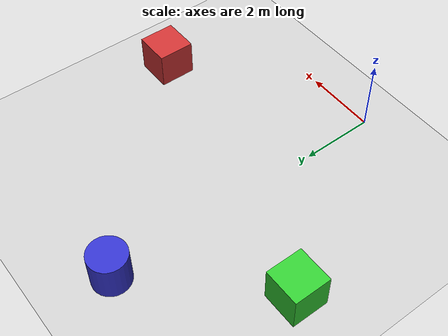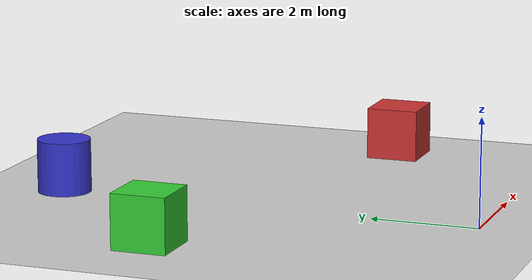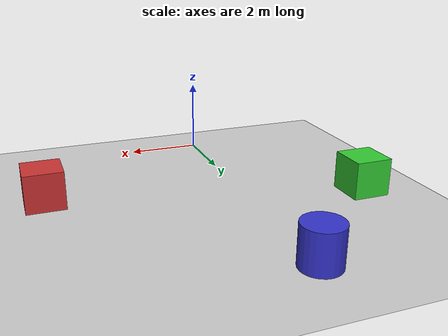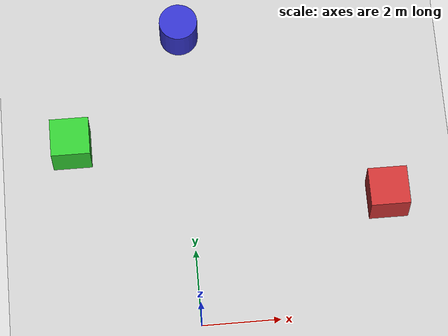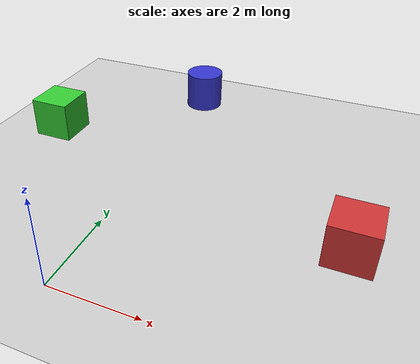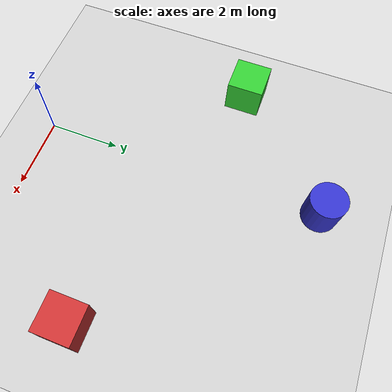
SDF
<?xml version="1.0" ?>
<sdf version="1.6">
  <world name="rover_world">

    <!-- Physics settings optimized for rover simulation -->
    <physics name="default_physics" default="0" type="ode">
      <gravity>0 0 -9.8066</gravity>
      <max_step_size>0.001</max_step_size>
      <real_time_factor>1.0</real_time_factor>
      <real_time_update_rate>1000</real_time_update_rate>
      <ode>
        <solver>
          <type>quick</type>
          <iters>150</iters>
          <sor>1.4</sor>
          <use_dynamic_moi_rescaling>1</use_dynamic_moi_rescaling>
        </solver>
        <constraints>
          <cfm>0.00001</cfm>
          <erp>0.2</erp>
          <contact_max_correcting_vel>2000.0</contact_max_correcting_vel>
          <contact_surface_layer>0.01</contact_surface_layer>
        </constraints>
      </ode>
    </physics>

    <!-- Lighting -->
    <include>
      <uri>model://sun</uri>
    </include>

    <!-- Ground plane -->
    <include>
      <uri>model://ground_plane</uri>
    </include>

    <!-- GPS reference point plugin -->
    <plugin name="gazebo_gps_plugin" filename="libgazebo_gps_plugin.so">
      <robotNamespace></robotNamespace>
      <gpsNoise>true</gpsNoise>
      <gpsXYRandomWalk>2.0</gpsXYRandomWalk>
      <gpsZRandomWalk>4.0</gpsZRandomWalk>
      <gpsXYNoiseDensity>0.0002</gpsXYNoiseDensity>
      <gpsZNoiseDensity>0.0004</gpsZNoiseDensity>
      <gpsVXYNoiseDensity>0.2</gpsVXYNoiseDensity>
      <gpsVZNoiseDensity>0.4</gpsVZNoiseDensity>
    </plugin>

    <!-- Test environment obstacles -->
    <model name="test_box_1">
      <pose>5 3 0.5 0 0 0</pose>
      <static>true</static>
      <link name="link">
        <visual name="visual">
          <geometry>
            <box><size>1 1 1</size></box>
          </geometry>
          <material>
            <ambient>0.8 0.2 0.2 1</ambient>
            <diffuse>0.8 0.2 0.2 1</diffuse>
          </material>
        </visual>
        <collision name="collision">
          <geometry>
            <box><size>1 1 1</size></box>
          </geometry>
        </collision>
      </link>
    </model>

    <model name="test_box_2">
      <pose>-3 5 0.5 0 0 0</pose>
      <static>true</static>
      <link name="link">
        <visual name="visual">
          <geometry>
            <box><size>1 1 1</size></box>
          </geometry>
          <material>
            <ambient>0.2 0.8 0.2 1</ambient>
            <diffuse>0.2 0.8 0.2 1</diffuse>
          </material>
        </visual>
        <collision name="collision">
          <geometry>
            <box><size>1 1 1</size></box>
          </geometry>
        </collision>
      </link>
    </model>

    <!-- Cylindrical obstacle -->
    <model name="test_cylinder">
      <pose>0 8 0.5 0 0 0</pose>
      <static>true</static>
      <link name="link">
        <visual name="visual">
          <geometry>
            <cylinder><radius>0.5</radius><length>1</length></cylinder>
          </geometry>
          <material>
            <ambient>0.2 0.2 0.8 1</ambient>
            <diffuse>0.2 0.2 0.8 1</diffuse>
          </material>
        </visual>
        <collision name="collision">
          <geometry>
            <cylinder><radius>0.5</radius><length>1</length></cylinder>
          </geometry>
        </collision>
      </link>
    </model>

    <!-- GUI settings -->
    <gui fullscreen='0'>
      <camera name='user_camera'>
        <pose frame=''>-8 -8 6 0 0.4 0.8</pose>
        <view_controller>orbit</view_controller>
        <projection_type>perspective</projection_type>
      </camera>
    </gui>

  </world>
</sdf>
